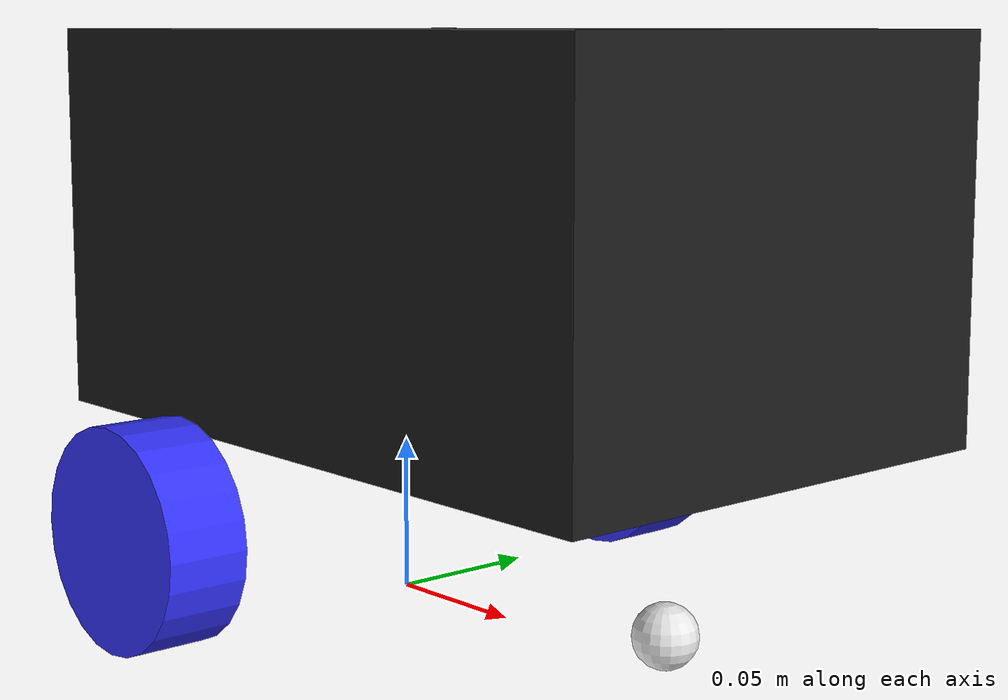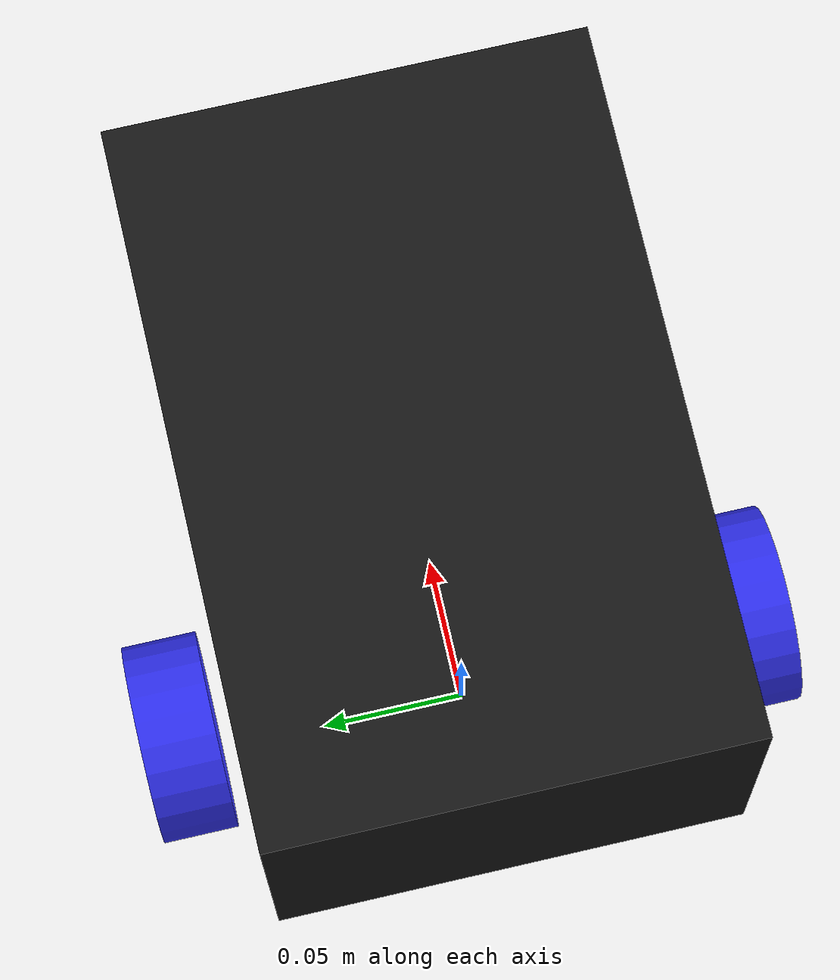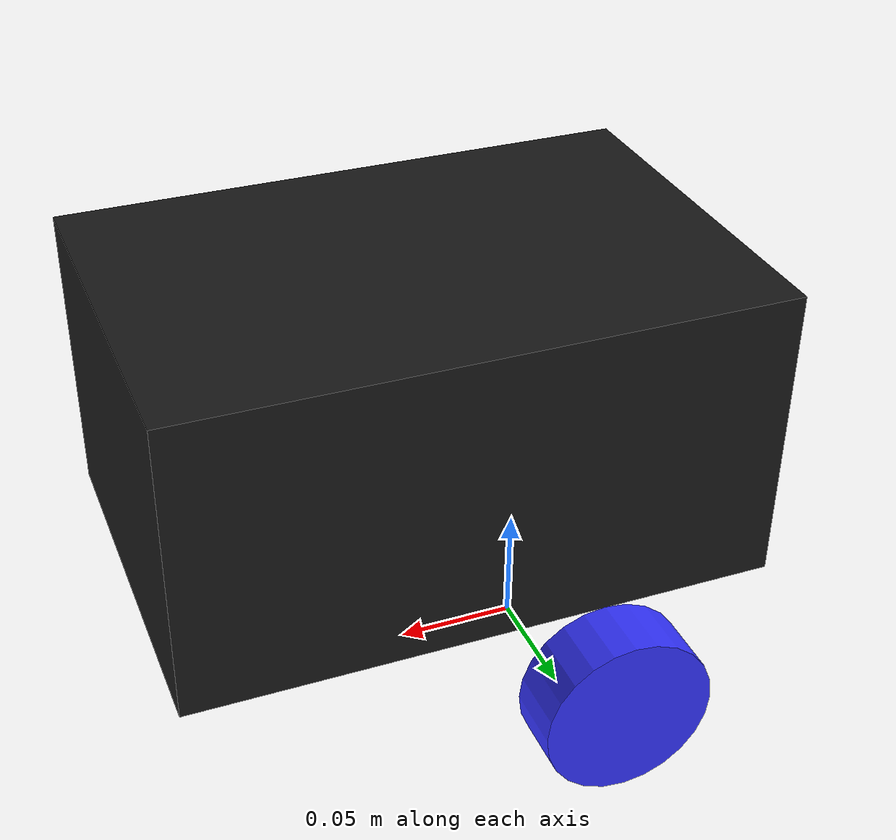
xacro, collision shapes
<?xml version="1.0"?>
<robot xmlns:xacro="http://www.ros.org/wiki/xacro">

  <xacro:include filename="inertial_macros.xacro"/>

  <!-- ================= PROPERTIES ================= -->

  <xacro:property name="chassis_length" value="0.24"/>
  <xacro:property name="chassis_width"  value="0.16"/>
  <xacro:property name="chassis_height" value="0.123"/>
  <xacro:property name="chassis_mass"   value="2.5"/>

  <xacro:property name="wheel_radius"     value="0.0346"/>
  <xacro:property name="wheel_thickness"  value="0.026"/>
  <xacro:property name="wheel_mass"       value="0.15"/>
  <xacro:property name="wheel_offset_x"   value="0.0"/>
  <xacro:property name="wheel_offset_y"   value="0.1"/>
  <xacro:property name="wheel_offset_z"   value="0.005"/>

  <xacro:property name="caster_wheel_radius" value="0.01"/>
  <xacro:property name="caster_wheel_mass"   value="0.1"/>
  <xacro:property name="caster_wheel_offset_x" value="0.075"/>
  <xacro:property name="caster_wheel_offset_z"
                  value="${wheel_offset_z - wheel_radius + caster_wheel_radius -0.024}"/>

  <!-- ================= MATERIALS ================= -->

  <material name="white">
    <color rgba="1 1 1 0.95"/>
  </material>

  <material name="orange">
    <color rgba="1 0.3 0.1 1"/>
  </material>

  <material name="blue">
    <color rgba="0.2 0.2 1 1"/>
  </material>

  <material name="black">
    <color rgba="0 0 0 0.99"/>
  </material>
 <material name="light_black">
    <color rgba="0.1 0.1 0.1 1"/>
  </material>

  <material name="red">
    <color rgba="1 0 0 0.9"/>
  </material>

  <material name="green">
    <color rgba="0 0.8 0 1"/>
  </material>

  <material name="grey">
    <color rgba="0.647 0.647 0.647 1"/>
  </material>

  <!-- ================= BASE LINK ================= -->

  <link name="base_link"/>

  <!-- ================= BASE FOOTPRINT ================= -->

  <joint name="base_footprint_joint" type="fixed">
    <parent link="base_link"/>
    <child link="base_footprint"/>
    <origin xyz="0 0 0" rpy="0 0 0"/>
  </joint>

  <link name="base_footprint"/>

  <!-- ================= CHASSIS ================= -->

  <joint name="chassis_joint" type="fixed">
    <parent link="base_link"/>
    <child link="chassis"/>
    <origin xyz="0.045 0 ${wheel_radius+0.02}"/>
  </joint>

  <link name="chassis">

    <visual>
      <origin xyz="0 0.0035 0" rpy="1.5708 0 1.5708"/>
      <geometry>
        <mesh filename="package://robot_descriptor/meshes/chassis_main.stl"
              scale="0.001 0.001 0.001"/>
      </geometry>
      <material name="light_black"/>
    </visual>

    <collision>
      <origin xyz="0 0 ${2*wheel_radius}"/>
      <geometry>
        <box size="${chassis_length} ${chassis_width} ${chassis_height}"/>
      </geometry>
    </collision>

    <xacro:inertial_box mass="2.5"
                        x="${chassis_length}"
                        y="${chassis_width}"
                        z="${chassis_height}">
        <origin xyz="${chassis_length/10} 0 ${chassis_height/2}" rpy="0 0 0"/>
    </xacro:inertial_box>

  </link>

  <gazebo reference="chassis">
    <material>Gazebo/Black</material>
  </gazebo>

  <!-- ================= IMU ================= -->

  <joint name="IMU" type="fixed">
    <parent link="chassis"/>
    <child link="imu"/>
    <origin xyz="-0.025 0 0.09" rpy="0 0 0"/>
  </joint>

    <link name="imu">

    <inertial>
        <mass value="0.01"/>
        <inertia ixx="1e-6" ixy="0" ixz="0"
                iyy="1e-6" iyz="0"
                izz="1e-6"/>
    </inertial>

    </link>

 <gazebo reference="imu">
  <sensor name="bno055" type="imu">
    <always_on>1</always_on>
    <preserveFixedJoint>true</preserveFixedJoint>
    <update_rate>100</update_rate>
    <visualize>true</visualize>
    <topic>imu</topic>
    <gz_frame_id>imu</gz_frame_id>
    <plugin filename="libignition-gazebo-imu-system.so" name="ignition::gazebo::systems::Imu">
    </plugin>
    <imu>
      <angular_velocity>
        <x><noise type="gaussian"><mean>0.0</mean><stddev>2e-4</stddev></noise></x>
        <y><noise type="gaussian"><mean>0.0</mean><stddev>2e-4</stddev></noise></y>
        <z><noise type="gaussian"><mean>0.0</mean><stddev>2e-4</stddev></noise></z>
      </angular_velocity>
      <linear_acceleration>
        <x><noise type="gaussian"><mean>0.0</mean><stddev>1.7e-2</stddev></noise></x>
        <y><noise type="gaussian"><mean>0.0</mean><stddev>1.7e-2</stddev></noise></y>
        <z><noise type="gaussian"><mean>0.0</mean><stddev>1.7e-2</stddev></noise></z>
      </linear_acceleration>
    </imu>
  </sensor>
</gazebo>
  <!-- ================= LEFT WHEEL ================= -->

  <joint name="left_wheel_joint" type="continuous">
    <parent link="base_link"/>
    <child link="left_wheel"/>
    <origin xyz="0 ${wheel_offset_y} ${wheel_radius}" rpy="-${pi/2} 0 0"/>
    <axis xyz="0 0 1"/>
  </joint>

  <link name="left_wheel">

    <visual>
      <origin xyz="0 0 -${wheel_offset_y}"
              rpy="1.5708 -1.5708 -${pi/2}"/>
      <geometry>
        <mesh filename="package://robot_descriptor/meshes/wheel.stl"
              scale="0.001 0.001 0.001"/>
      </geometry>
      <material name="blue"/>
    </visual>

    <collision>
      <geometry>
        <cylinder radius="${wheel_radius}"
                  length="${wheel_thickness}"/>
      </geometry>
    </collision>

    <xacro:inertial_cylinder mass="${wheel_mass}"
                             length="${wheel_thickness}"
                             radius="${wheel_radius}">
      <origin xyz="0 0 0" rpy="0 0 0"/>
    </xacro:inertial_cylinder>

  </link>

  <gazebo reference="left_wheel">
    <material>Gazebo/Blue</material>
  </gazebo>

  <!-- ================= RIGHT WHEEL ================= -->

  <joint name="right_wheel_joint" type="continuous">
    <parent link="base_link"/>
    <child link="right_wheel"/>
    <origin xyz="0 -${wheel_offset_y} ${wheel_radius}" rpy="${pi/2} 0 0"/>
    <axis xyz="0 0 -1"/>
  </joint>

  <link name="right_wheel">

    <visual>
      <origin xyz="0 0 -${wheel_offset_y}"
              rpy="1.5708 -1.5708 -${pi/2}"/>
      <geometry>
        <mesh filename="package://robot_descriptor/meshes/wheel.stl"
              scale="0.001 0.001 0.001"/>
      </geometry>
      <material name="blue"/>
    </visual>

    <collision>
      <geometry>
        <cylinder radius="${wheel_radius}"
                  length="${wheel_thickness}"/>
      </geometry>
    </collision>

    <xacro:inertial_cylinder mass="${wheel_mass}"
                             length="${wheel_thickness}"
                             radius="${wheel_radius}">
      <origin xyz="0 0 0" rpy="0 0 0"/>
    </xacro:inertial_cylinder>

  </link>

  <gazebo reference="right_wheel">
    <material>Gazebo/Blue</material>
  </gazebo>

  <!-- ================= CASTER ================= -->

  <joint name="caster_wheel_joint" type="fixed">
    <parent link="chassis"/>
    <child link="caster_wheel"/>
    <origin xyz="${caster_wheel_offset_x} 0 ${caster_wheel_offset_z}"/>
  </joint>

  <link name="caster_wheel">

    <collision>
      <geometry>
        <sphere radius="${caster_wheel_radius}"/>
      </geometry>
    </collision>

    <xacro:inertial_sphere mass="${caster_wheel_mass}"
                           radius="${caster_wheel_radius}">
      <origin xyz="0 0 0" rpy="0 0 0"/>
    </xacro:inertial_sphere>

  </link>

  <gazebo reference="caster_wheel">
    <material>Gazebo/White</material>
    <mu1 value="0.001"/>
    <mu2 value="0.001"/>
  </gazebo>
    <gazebo>
    <plugin filename="ignition-gazebo-pose-publisher-system" name="ignition::gazebo::systems::PosePublisher">
        <publish_link_pose>true</publish_link_pose>
        <use_pose_vector_msg>true</use_pose_vector_msg>
        <static_publisher>true</static_publisher>
        <static_update_frequency>10</static_update_frequency>
    </plugin>
    </gazebo>

  <gazebo>
    <plugin
        filename="gz-sim-diff-drive-system"
        name="gz::sim::systems::DiffDrive">

      <left_joint>left_wheel_joint</left_joint>
      <right_joint>right_wheel_joint</right_joint>

      <wheel_separation>0.20</wheel_separation>
      <wheel_radius>0.0346</wheel_radius>

      <topic>cmd_vel</topic>

      <odom_topic>odom</odom_topic>
      <tf_topic>tf</tf_topic>

      <frame_id>odom</frame_id>
      <child_frame_id>base_link</child_frame_id>

      <publish_odom>true</publish_odom>
      <publish_tf>true</publish_tf>

    </plugin>
  </gazebo>
</robot>

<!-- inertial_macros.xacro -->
<robot xmlns:xacro="http://www.ros.org/wiki/xacro" >

    <xacro:macro name="inertial_sphere" params="mass radius *origin">
        <inertial>
            <xacro:insert_block name="origin"/>
            <mass value="${mass}" />
            <inertia ixx="${(2/5) * mass * (radius*radius)}" ixy="0.0" ixz="0.0"
                    iyy="${(2/5) * mass * (radius*radius)}" iyz="0.0"
                    izz="${(2/5) * mass * (radius*radius)}" />
        </inertial>
    </xacro:macro>

    <xacro:macro name="inertial_box" params="mass x y z *origin">
        <inertial>
            <xacro:insert_block name="origin"/>
            <mass value="${mass}" />
            <inertia ixx="${(1/12) * mass * (y*y+z*z)}" ixy="0.0" ixz="0.0"
                    iyy="${(1/12) * mass * (x*x+z*z)}" iyz="0.0"
                    izz="${(1/12) * mass * (x*x+y*y)}" />
        </inertial>
    </xacro:macro>

    <xacro:macro name="inertial_cylinder" params="mass length radius *origin">
        <inertial>
            <xacro:insert_block name="origin"/>
            <mass value="${mass}" />
            <inertia ixx="${(1/12) * mass * (3*radius*radius + length*length)}" ixy="0.0" ixz="0.0"
                    iyy="${(1/12) * mass * (3*radius*radius + length*length)}" iyz="0.0"
                    izz="${(1/2) * mass * (radius*radius)}" />
        </inertial>
    </xacro:macro>

</robot>
